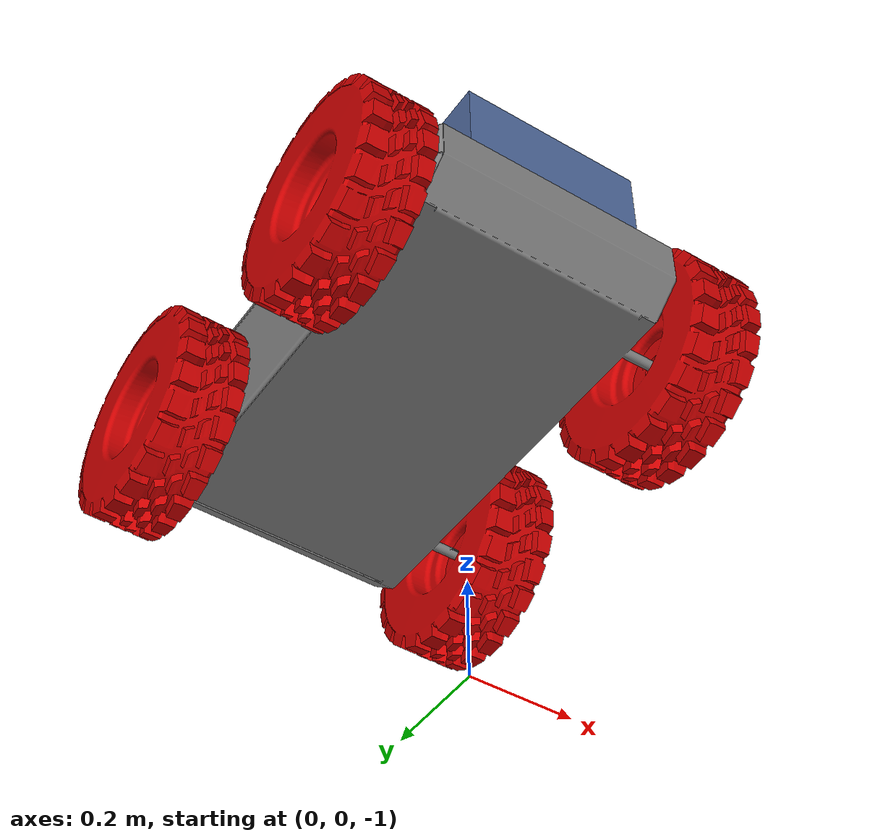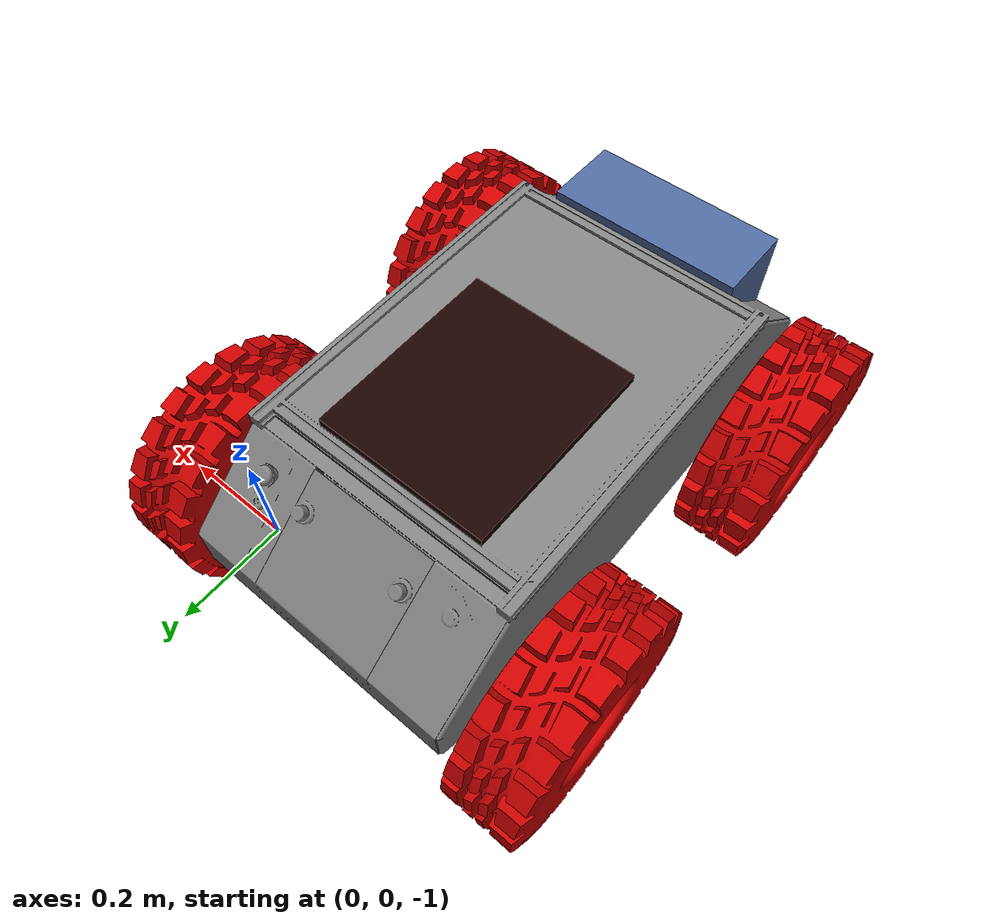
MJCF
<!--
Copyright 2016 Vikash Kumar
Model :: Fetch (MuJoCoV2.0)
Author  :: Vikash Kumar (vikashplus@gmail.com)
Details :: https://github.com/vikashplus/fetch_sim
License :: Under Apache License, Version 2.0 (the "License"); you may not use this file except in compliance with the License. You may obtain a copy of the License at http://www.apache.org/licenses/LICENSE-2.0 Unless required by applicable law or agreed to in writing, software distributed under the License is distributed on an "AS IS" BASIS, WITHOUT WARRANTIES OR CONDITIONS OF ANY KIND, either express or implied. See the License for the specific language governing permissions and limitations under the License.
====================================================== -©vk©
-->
<!-- Modified for furniture environment -->

<mujoco model="utv">
    <actuator>
        <velocity ctrllimited="true" ctrlrange="-7 7" joint="joint_front_left_wheel" kv="40"
                  name="vel_front_left_wheel"/>
                <velocity ctrllimited="true" ctrlrange="-7 7" joint="joint_front_right_wheel" kv="40"
                  name="vel_front_right_wheel"/>
        <velocity ctrllimited="true" ctrlrange="-7 7" joint="joint_rear_left_wheel" kv="40" name="vel_rear_left_wheel"/>

        <velocity ctrllimited="true" ctrlrange="-7 7" joint="joint_rear_right_wheel" kv="40"
                  name="vel_rear_right_wheel"/>
    </actuator>
    <asset>
        <mesh name="base_link" file="meshes/base_link.stl"/>
        <mesh name="wheel_link" file="meshes/wheel.stl"/>
    </asset>

    <default/>

    <worldbody>
        <body name='base' pos='0 0 0' quat="0 0 0 1">
            <joint type="free" name="car_free_joint"/>
            <body name="base_link" pos="0.3 0.27 -0.8" quat="0.707 0 0 0.707">
                <geom type="mesh" mesh="base_link" name="base_link_collision"/>
                <inertial pos="-0.0036 0 0.0014" quat="0.760522 -0.0132765 -0.00610742 0.649147" mass="50"
                          diaginertia="150 140 100"/>
                <body name="front_left_wheel_link" pos="0.256 0.2854 0.03282" quat=" 0 0 0 1">
                    <joint name="joint_front_left_wheel" pos="0 0 0" axis="0 1 0" limited="false" damping="50"/>
                    <inertial pos="0 0 0" quat="1 0 0 0" mass="1"
                              diaginertia="0.18 0.2 0.18"/>
                    <geom type="mesh" rgba="0.8 0 0 1" mesh="wheel_link" name="l_wheel_link_collision"/>
                </body>
                <body name="front_right_wheel_link" pos="0.256 -0.2854 0.03282" quat="0 0 0 1">
                    <joint name="joint_front_right_wheel" pos="0 0 0" axis="0 1 0" limited="false" damping="50"/>
                    <inertial pos="0 0 0" quat="1 0 0 0"
                              mass="1" diaginertia="0.18 0.2 0.18"/>
                    <geom type="mesh" rgba="0.8 0 0 1" mesh="wheel_link" name="r_wheel_link_collision"/>
                </body>
                <body name="rear_left_wheel_link" pos="-0.256 0.2854 0.03282 " quat="0 0 0 1">
                    <joint name="joint_rear_left_wheel" pos="0 0 0" axis="0 1 0" limited="false"/>
                    <inertial pos="0 0 0" quat="1 0 0 0"
                              mass="1" diaginertia="0.18 0.2 0.18"/>
                    <geom type="mesh" rgba="0.8 0 0 1" mesh="wheel_link" name="rear_left_wheel_link_collision"/>
                </body>
                <body name="rear_right_wheel_link" pos="-0.256 -0.2854 0.03282" quat="0 0 0 1">
                    <joint name="joint_rear_right_wheel" pos="0 0 0" axis="0 1 0" limited="false" damping="50"/>
                    <inertial pos="0 0 0" quat="1 0 0 0"
                              mass="1" diaginertia="0.18 0.2 0.18"/>
                    <geom type="mesh" rgba="0.8 0 0 1" mesh="wheel_link" name="rear_right_wheel_link_collision"/>
                </body>
                <body name="arm_install_block" pos="-0.08 0 0.24" quat="1 0 0 0">
                    <inertial pos="0 0 0" quat="1 0 0 0"
                              mass="0.00001" diaginertia="3.39072e-07 2.83252e-07 2.02321e-07"/>
                    <geom rgba="0.1 0 0 1" type="box" size=" 0.15 0.13 0.01" name="arm_install_block_collision"/>
                </body>
                <body name="sensor_install_block" pos="0.335 0 0.15" quat="1 0 0 0">
                    <inertial pos="0 0 0" quat="1 0 0 0"
                              mass="0.00001" diaginertia="3.39072e-07 2.83252e-07 2.02321e-07"/>
                    <geom rgba="0.3 0.4 0.6 1" type="box" size=" 0.06 0.15 0.1" name="sensor_install_block_collision"/>
                </body>

            </body>
        </body>
    </worldbody>

</mujoco>
